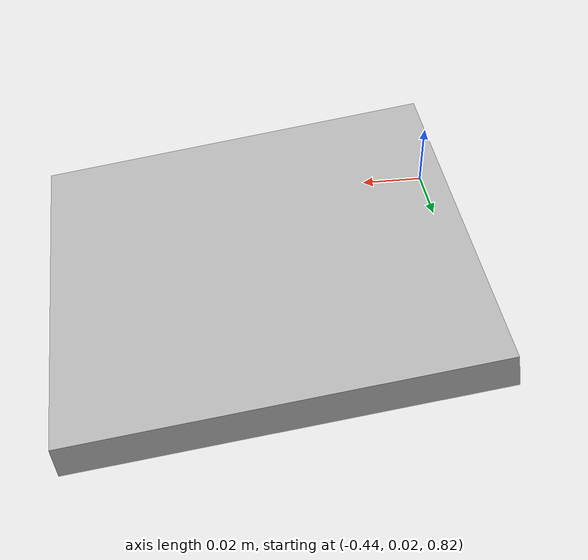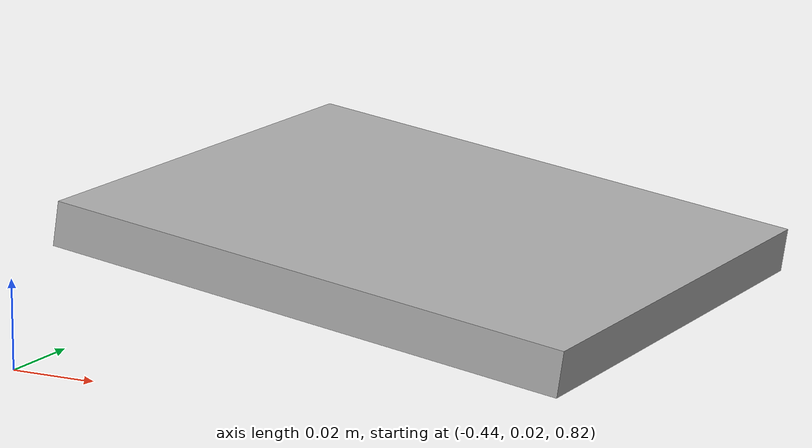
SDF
<sdf version="1.6">
 <world name="default">
  <gravity>0 0 0</gravity>
  <light name="sun" type="directional">
   <pose>0 0 10 0 -0 0</pose>
   <diffuse>0.8 0.8 0.8 1</diffuse>
   <specular>0.1 0.1 0.1 1</specular>
   <attenuation>
    <range>1000</range>
    <constant>0.9</constant>
    <linear>0.01</linear>
    <quadratic>0.001</quadratic>
   </attenuation>
   <direction>-0.5 0.5 -1</direction>
  </light>
  <magnetic_field>6e-06 2.3e-05 -4.2e-05</magnetic_field>
  <atmosphere type="adiabatic"/>
  <physics name="default_physics" default="0" type="ode">
   <max_step_size>0.001</max_step_size>
   <real_time_factor>1</real_time_factor>
   <real_time_update_rate>1000</real_time_update_rate>
  </physics>
  <scene><ambient>0.4 0.4 0.4 1</ambient><background>0.7 0.7 0.7 1</background><shadows>1</shadows></scene>
  <spherical_coordinates>
   <surface_model>EARTH_WGS84</surface_model>
   <latitude_deg>0</latitude_deg>
   <longitude_deg>0</longitude_deg>
   <elevation>0</elevation>
   <heading_deg>0</heading_deg>
  </spherical_coordinates>
  <model name="aruco_box">
   <link name="link">
    <pose>0 0 0 0 -0 0.071264</pose>
    <inertial>
     <mass>1</mass>
     <inertia>
      <ixx>0.166667</ixx>
      <ixy>0</ixy>
      <ixz>0</ixz>
      <iyy>0.166667</iyy>
      <iyz>0</iyz>
      <izz>0.166667</izz>
     </inertia>
    </inertial>
    <visual name="visual">
     <geometry><mesh><uri>model://new_ur_gazebo/marca_aruco/aruco.dae</uri></mesh></geometry>
     <material>
      <script><name>my_material</name><uri>file://new_ur_gazebo/marca_aruco/my_material.material</uri></script>
      <shader type="pixel"><normal_map>__default__</normal_map></shader>
      <ambient>0.3 0.3 0.3 1</ambient>
      <diffuse>0.7 0.7 0.7 1</diffuse>
      <specular>0.01 0.01 0.01 1</specular>
      <emissive>0 0 0 1</emissive>
     </material>
    </visual>
    <collision name="collision">
     <geometry><mesh><uri>model://new_ur_gazebo/marca_aruco/aruco.dae</uri><scale>1 1 1</scale></mesh></geometry>
     <surface>
      <friction>
       <ode><mu>1</mu><mu2>1</mu2><fdir1>0 0 0</fdir1><slip1>0</slip1><slip2>0</slip2></ode>
       <torsional>
        <coefficient>1</coefficient>
        <patch_radius>0</patch_radius>
        <surface_radius>0</surface_radius>
        <use_patch_radius>1</use_patch_radius>
        <ode><slip>0</slip></ode>
       </torsional>
      </friction>
      <bounce><restitution_coefficient>0</restitution_coefficient><threshold>1e+06</threshold></bounce>
      <contact>
       <collide_without_contact>0</collide_without_contact>
       <collide_without_contact_bitmask>1</collide_without_contact_bitmask>
       <collide_bitmask>1</collide_bitmask>
       <ode>
        <soft_cfm>0</soft_cfm>
        <soft_erp>0.2</soft_erp>
        <kp>1e+13</kp>
        <kd>1</kd>
        <max_vel>0.01</max_vel>
        <min_depth>0</min_depth>
       </ode>
       <bullet>
        <split_impulse>1</split_impulse>
        <split_impulse_penetration_threshold>-0.01</split_impulse_penetration_threshold>
        <soft_cfm>0</soft_cfm>
        <soft_erp>0.2</soft_erp>
        <kp>1e+13</kp>
        <kd>1</kd>
       </bullet>
      </contact>
     </surface>
    </collision>
   </link>
   <static>true</static>
   <pose>-0.374428 0.087925 0.842069 -1.551989 -1.488061 -0.019085</pose>
  </model>
 </world>
</sdf>
